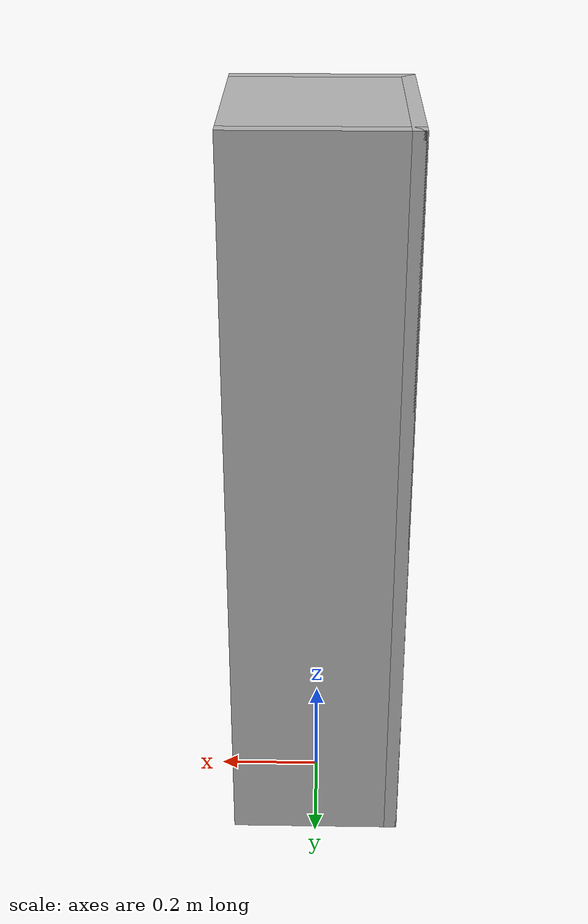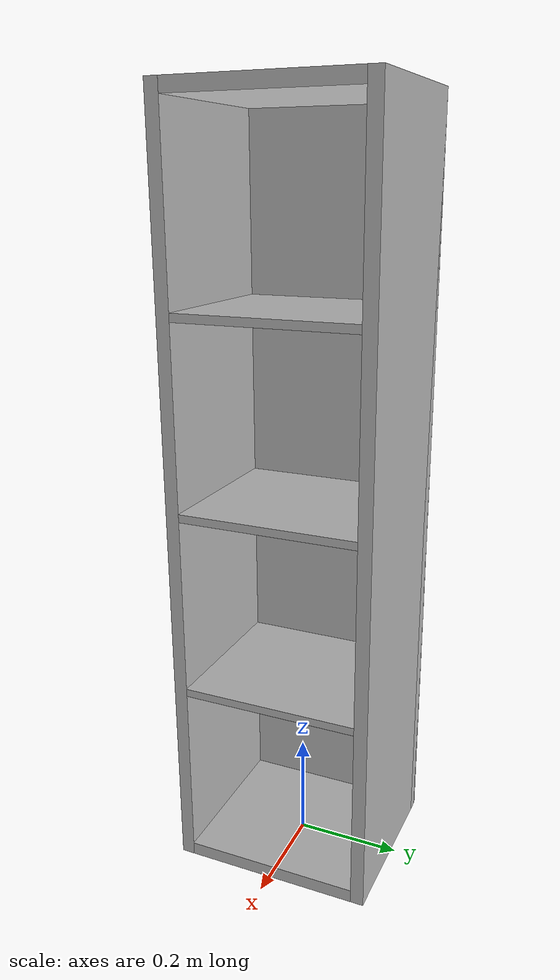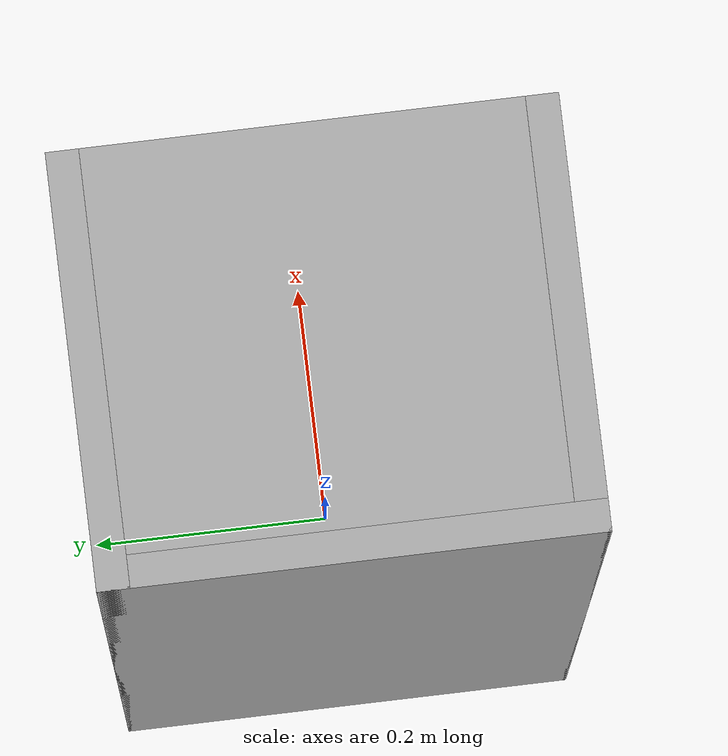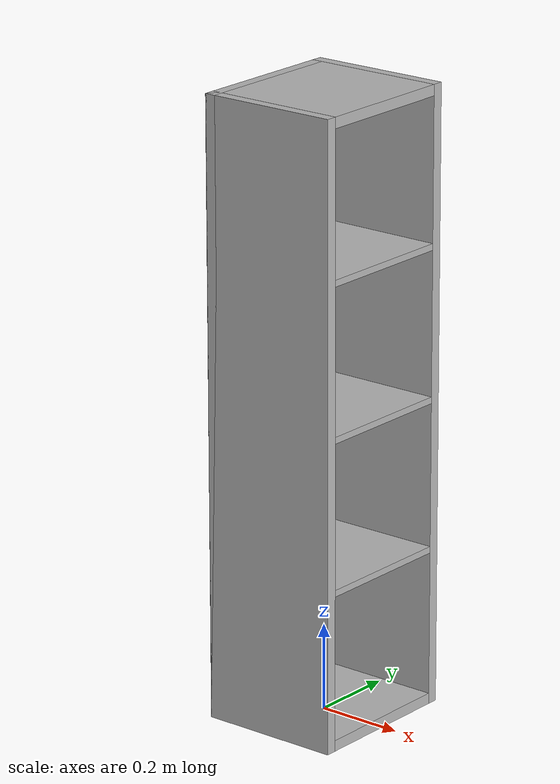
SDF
<?xml version="1.0" ?>
<sdf version="1.6">
  <model name="impuls/wooden_bookcase" type="shelf">
    <static>true</static>
    <link name="1_link">
      <collision name="1_col">
        <geometry>
          <box>
            <size>0.328 0.025 1.415</size>
          </box>
        </geometry>
      </collision>
      <visual name="1_vis">
        <geometry>
          <box>
            <size>0.328 0.025 1.415</size>
          </box>
        </geometry>
      </visual>
      <pose>0.0 -0.1785 0.7075 0 0 0</pose>
    </link>
    <link name="2_link">
      <collision name="2_col">
        <geometry>
          <box>
            <size>0.328 0.025 1.415</size>
          </box>
        </geometry>
      </collision>
      <visual name="2_vis">
        <geometry>
          <box>
            <size>0.328 0.025 1.415</size>
          </box>
        </geometry>
      </visual>
      <pose>0.0 0.1785 0.7075 0 0 0</pose>
    </link>
    <link name="3_link">
      <collision name="3_col">
        <geometry>
          <box>
            <size>0.025 0.382 1.415</size>
          </box>
        </geometry>
      </collision>
      <visual name="3_vis">
        <geometry>
          <box>
            <size>0.025 0.382 1.415</size>
          </box>
        </geometry>
      </visual>
      <pose>-0.1515 0.0 0.7075 0 0 0</pose>
    </link>
    <link name="4_link">
      <collision name="4_col">
        <geometry>
          <box>
            <size>0.303 0.332 0.025</size>
          </box>
        </geometry>
      </collision>
      <visual name="4_vis">
        <geometry>
          <box>
            <size>0.303 0.332 0.025</size>
          </box>
        </geometry>
      </visual>
      <pose>0.0125 0.0 1.4025 0 0 0</pose>
    </link>
    <link name="5_link">
      <collision name="5_col">
        <geometry>
          <box>
            <size>0.303 0.332 0.025</size>
          </box>
        </geometry>
      </collision>
      <visual name="5_vis">
        <geometry>
          <box>
            <size>0.303 0.332 0.025</size>
          </box>
        </geometry>
      </visual>
      <pose>0.0125 0.0 0.0125 0 0 0</pose>
    </link>
    <link name="6_link">
      <collision name="6_col">
        <geometry>
          <box>
            <size>0.303 0.332 0.015</size>
          </box>
        </geometry>
      </collision>
      <visual name="6_vis">
        <geometry>
          <box>
            <size>0.303 0.332 0.015</size>
          </box>
        </geometry>
      </visual>
      <pose>0.0125 0.0 0.3655 0 0 0</pose>
    </link>
    <link name="7_link">
      <collision name="7_col">
        <geometry>
          <box>
            <size>0.303 0.332 0.015</size>
          </box>
        </geometry>
      </collision>
      <visual name="7_vis">
        <geometry>
          <box>
            <size>0.303 0.332 0.015</size>
          </box>
        </geometry>
      </visual>
      <pose>0.0125 0.0 0.7115 0 0 0</pose>
    </link>
    <link name="8_link">
      <collision name="8_col">
        <geometry>
          <box>
            <size>0.303 0.332 0.015</size>
          </box>
        </geometry>
      </collision>
      <visual name="8_vis">
        <geometry>
          <box>
            <size>0.303 0.332 0.015</size>
          </box>
        </geometry>
      </visual>
      <pose>0.0125 0.0 1.0575 0 0 0</pose>
    </link>
    <link name="in_front_of">
      <virtual_volume name="in_front_of_vv">
        <geometry>
          <box>
            <size>0.20000000000000007 0.182 0.01</size>
          </box>
        </geometry>
        <pose>0.6639999999999999 0.0 0.005 0 0 0</pose>
      </virtual_volume>
    </link>
    <link name="shelf1">
      <virtual_volume name="shelf1_vv">
        <geometry>
          <box>
            <size>0.28300000000000003 0.272 0.25</size>
          </box>
        </geometry>
        <pose>0.012500000000000011 0.0 0.16999999999999998 0 0 0</pose>
      </virtual_volume>
    </link>
    <link name="shelf2">
      <virtual_volume name="shelf2_vv">
        <geometry>
          <box>
            <size>0.28300000000000003 0.272 0.25</size>
          </box>
        </geometry>
        <pose>0.012500000000000011 0.0 0.518 0 0 0</pose>
      </virtual_volume>
    </link>
    <link name="shelf3">
      <virtual_volume name="shelf3_vv">
        <geometry>
          <box>
            <size>0.28300000000000003 0.272 0.25</size>
          </box>
        </geometry>
        <pose>0.012500000000000011 0.0 0.864 0 0 0</pose>
      </virtual_volume>
    </link>
    <link name="shelf4">
      <virtual_volume name="shelf4_vv">
        <geometry>
          <box>
            <size>0.28300000000000003 0.272 0.25</size>
          </box>
        </geometry>
        <pose>0.012500000000000011 0.0 1.21 0 0 0</pose>
      </virtual_volume>
    </link>
  </model>
</sdf>
